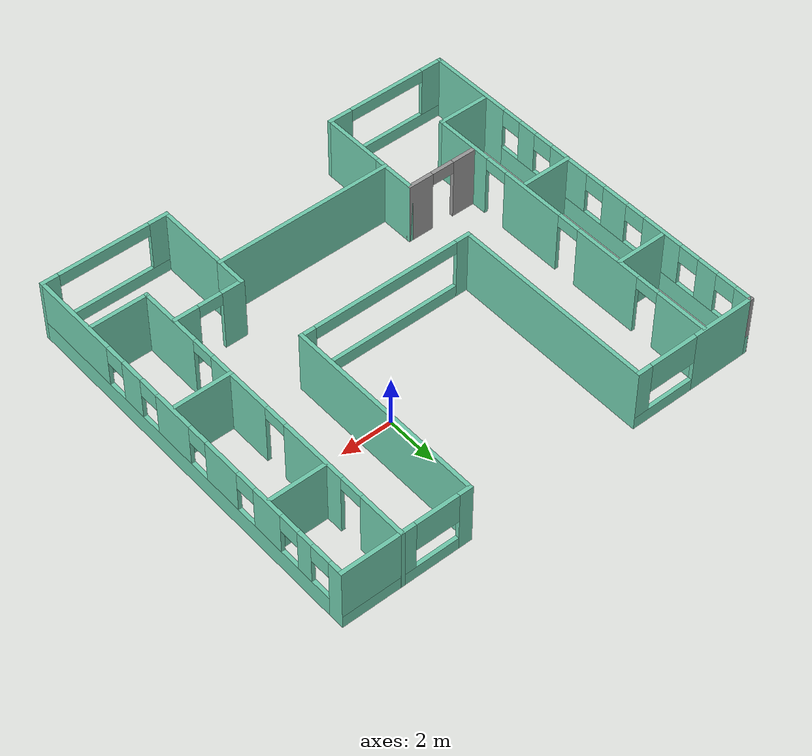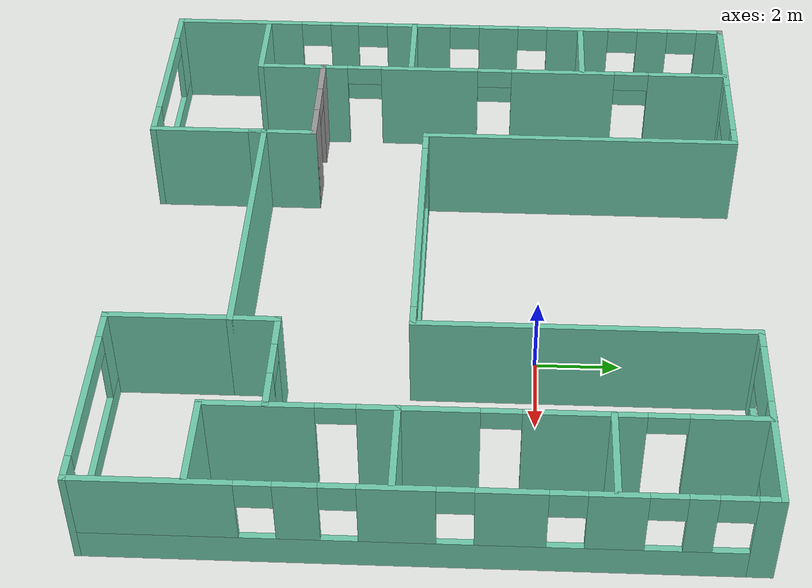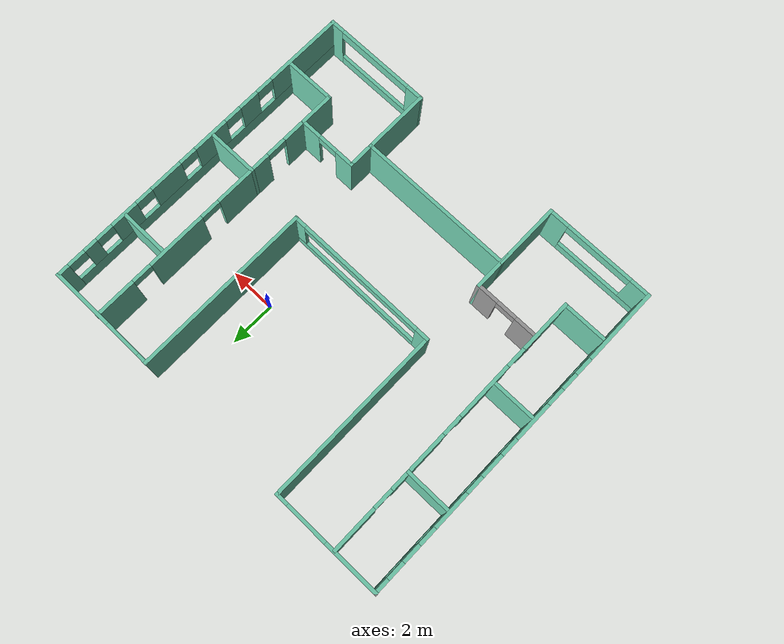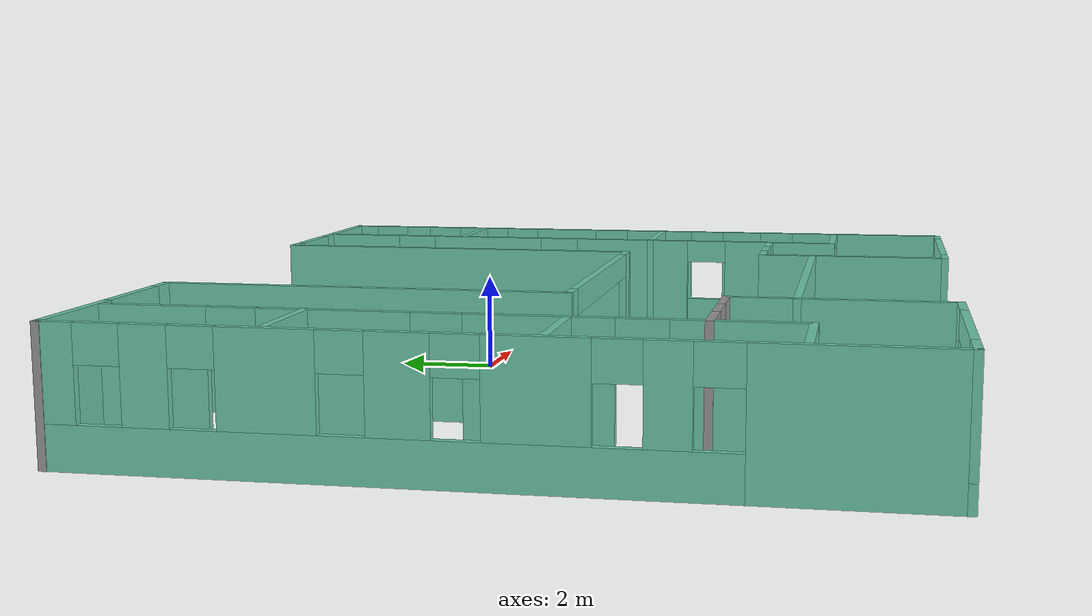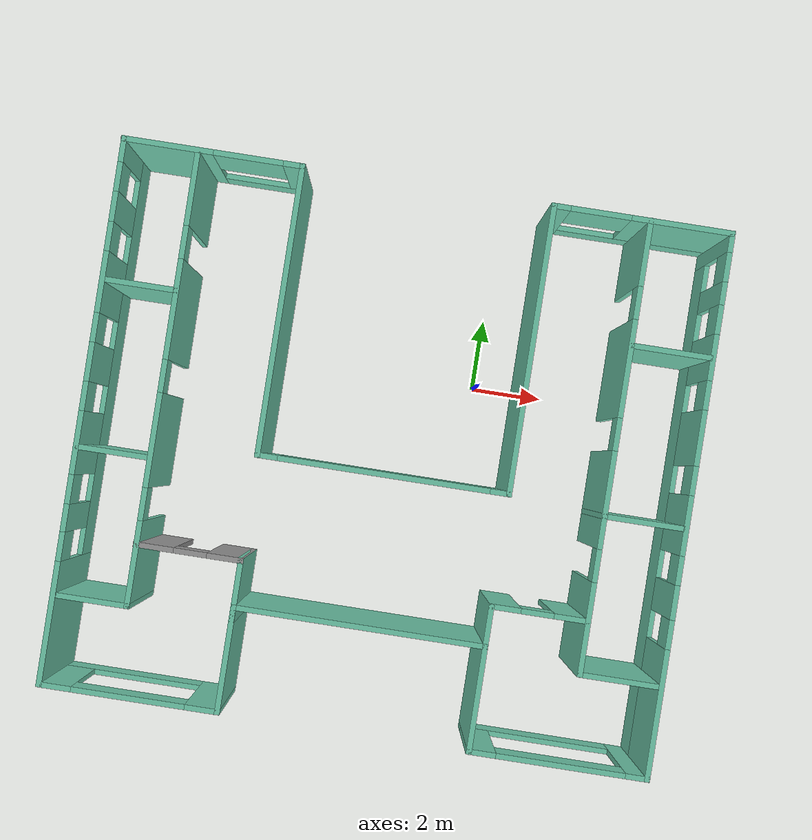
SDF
<?xml version='1.0'?>
<sdf version='1.6'>
  <model name='building'>
    <pose frame=''>-2.23356 -2.43171 0 0 -0 0</pose>
    <link name='Wall_0'>
      <collision name='Wall_0_Collision'>
        <geometry>
          <box>
            <size>0.16 0.15 2.5</size>
          </box>
        </geometry>
        <pose frame=''>0 0 1.25 0 -0 0</pose>
      </collision>
      <visual name='Wall_0_Visual'>
        <pose frame=''>0 0 1.25 0 -0 0</pose>
        <geometry>
          <box>
            <size>0.16 0.15 2.5</size>
          </box>
        </geometry>
        <material>
          <script>
            <uri>file://media/materials/scripts/gazebo.material</uri>
            <name>Gazebo/Grey</name>
          </script>
          <ambient>1 1 1 1</ambient>
        </material>
        <meta>
          <layer>0</layer>
        </meta>
      </visual>
      <pose frame=''>-8.275 7.4223 0 0 -0 0</pose>
    </link>
    <link name='Wall_1'>
      <pose frame=''>-5.845 7.4223 0 0 -0 0</pose>
      <visual name='Wall_1_Visual_0'>
        <pose frame=''>-1.24921 0 1.25 0 -0 0</pose>
        <geometry>
          <box>
            <size>2.50157 0.15 2.5</size>
          </box>
        </geometry>
        <material>
          <script>
            <uri>file://media/materials/scripts/gazebo.material</uri>
            <name>Gazebo/Grey</name>
          </script>
          <ambient>0.435294 0.796078 0.67451 1</ambient>
        </material>
        <meta>
          <layer>0</layer>
        </meta>
      </visual>
      <collision name='Wall_1_Collision_0'>
        <geometry>
          <box>
            <size>2.50157 0.15 2.5</size>
          </box>
        </geometry>
        <pose frame=''>-1.24921 0 1.25 0 -0 0</pose>
      </collision>
      <visual name='Wall_1_Visual_1'>
        <pose frame=''>1.25079 0 0.25 0 -0 0</pose>
        <geometry>
          <box>
            <size>2.49843 0.15 0.5</size>
          </box>
        </geometry>
        <material>
          <script>
            <uri>file://media/materials/scripts/gazebo.material</uri>
            <name>Gazebo/Grey</name>
          </script>
          <ambient>0.435294 0.796078 0.67451 1</ambient>
        </material>
        <meta>
          <layer>0</layer>
        </meta>
      </visual>
      <collision name='Wall_1_Collision_1'>
        <geometry>
          <box>
            <size>2.49843 0.15 0.5</size>
          </box>
        </geometry>
        <pose frame=''>1.25079 0 0.25 0 -0 0</pose>
      </collision>
      <visual name='Wall_1_Visual_2'>
        <pose frame=''>2.20141 0 1.5 0 -0 0</pose>
        <geometry>
          <box>
            <size>0.597181 0.15 2</size>
          </box>
        </geometry>
        <material>
          <script>
            <uri>file://media/materials/scripts/gazebo.material</uri>
            <name>Gazebo/Grey</name>
          </script>
          <ambient>0.435294 0.796078 0.67451 1</ambient>
        </material>
        <meta>
          <layer>0</layer>
        </meta>
      </visual>
      <collision name='Wall_1_Collision_2'>
        <geometry>
          <box>
            <size>0.597181 0.15 2</size>
          </box>
        </geometry>
        <pose frame=''>2.20141 0 1.5 0 -0 0</pose>
      </collision>
      <visual name='Wall_1_Visual_3'>
        <pose frame=''>0.952195 0 1.9 0 -0 0</pose>
        <geometry>
          <box>
            <size>1.90125 0.15 1.2</size>
          </box>
        </geometry>
        <material>
          <script>
            <uri>file://media/materials/scripts/gazebo.material</uri>
            <name>Gazebo/Grey</name>
          </script>
          <ambient>0.435294 0.796078 0.67451 1</ambient>
        </material>
        <meta>
          <layer>0</layer>
        </meta>
      </visual>
      <collision name='Wall_1_Collision_3'>
        <geometry>
          <box>
            <size>1.90125 0.15 1.2</size>
          </box>
        </geometry>
        <pose frame=''>0.952195 0 1.9 0 -0 0</pose>
      </collision>
    </link>
    <link name='Wall_10'>
      <collision name='Wall_10_Collision'>
        <geometry>
          <box>
            <size>3 0.15 2.5</size>
          </box>
        </geometry>
        <pose frame=''>0 0 1.25 0 -0 0</pose>
      </collision>
      <visual name='Wall_10_Visual'>
        <pose frame=''>0 0 1.25 0 -0 0</pose>
        <geometry>
          <box>
            <size>3 0.15 2.5</size>
          </box>
        </geometry>
        <material>
          <script>
            <uri>file://media/materials/scripts/gazebo.material</uri>
            <name>Gazebo/Grey</name>
          </script>
          <ambient>0.435294 0.796078 0.67451 1</ambient>
        </material>
        <meta>
          <layer>0</layer>
        </meta>
      </visual>
      <pose frame=''>-3.42 -6.0027 0 0 0 -1.5708</pose>
    </link>
    <link name='Wall_11'>
      <pose frame=''>-5.845 -7.4277 0 0 -0 3.14159</pose>
      <visual name='Wall_11_Visual_0'>
        <pose frame=''>-2.0178 0 1.25 0 -0 0</pose>
        <geometry>
          <box>
            <size>0.964396 0.15 2.5</size>
          </box>
        </geometry>
        <material>
          <script>
            <uri>file://media/materials/scripts/gazebo.material</uri>
            <name>Gazebo/Grey</name>
          </script>
          <ambient>0.435294 0.796078 0.67451 1</ambient>
        </material>
        <meta>
          <layer>0</layer>
        </meta>
      </visual>
      <collision name='Wall_11_Collision_0'>
        <geometry>
          <box>
            <size>0.964396 0.15 2.5</size>
          </box>
        </geometry>
        <pose frame=''>-2.0178 0 1.25 0 -0 0</pose>
      </collision>
      <visual name='Wall_11_Visual_1'>
        <pose frame=''>0.482198 0 0.25 0 -0 0</pose>
        <geometry>
          <box>
            <size>4.0356 0.15 0.5</size>
          </box>
        </geometry>
        <material>
          <script>
            <uri>file://media/materials/scripts/gazebo.material</uri>
            <name>Gazebo/Grey</name>
          </script>
          <ambient>0.435294 0.796078 0.67451 1</ambient>
        </material>
        <meta>
          <layer>0</layer>
        </meta>
      </visual>
      <collision name='Wall_11_Collision_1'>
        <geometry>
          <box>
            <size>4.0356 0.15 0.5</size>
          </box>
        </geometry>
        <pose frame=''>0.482198 0 0.25 0 -0 0</pose>
      </collision>
      <visual name='Wall_11_Visual_2'>
        <pose frame=''>2.0292 0 1.5 0 -0 0</pose>
        <geometry>
          <box>
            <size>0.941604 0.15 2</size>
          </box>
        </geometry>
        <material>
          <script>
            <uri>file://media/materials/scripts/gazebo.material</uri>
            <name>Gazebo/Grey</name>
          </script>
          <ambient>0.435294 0.796078 0.67451 1</ambient>
        </material>
        <meta>
          <layer>0</layer>
        </meta>
      </visual>
      <collision name='Wall_11_Collision_2'>
        <geometry>
          <box>
            <size>0.941604 0.15 2</size>
          </box>
        </geometry>
        <pose frame=''>2.0292 0 1.5 0 -0 0</pose>
      </collision>
      <visual name='Wall_11_Visual_3'>
        <pose frame=''>0.011396 0 2.25 0 -0 0</pose>
        <geometry>
          <box>
            <size>3.094 0.15 0.5</size>
          </box>
        </geometry>
        <material>
          <script>
            <uri>file://media/materials/scripts/gazebo.material</uri>
            <name>Gazebo/Grey</name>
          </script>
          <ambient>0.435294 0.796078 0.67451 1</ambient>
        </material>
        <meta>
          <layer>0</layer>
        </meta>
      </visual>
      <collision name='Wall_11_Collision_3'>
        <geometry>
          <box>
            <size>3.094 0.15 0.5</size>
          </box>
        </geometry>
        <pose frame=''>0.011396 0 2.25 0 -0 0</pose>
      </collision>
    </link>
    <link name='Wall_12'>
      <pose frame=''>-8.27 -0.002705 0 0 -0 1.5708</pose>
      <visual name='Wall_12_Visual_0'>
        <pose frame=''>-5.78698 0 1.25 0 -0 0</pose>
        <geometry>
          <box>
            <size>3.42604 0.15 2.5</size>
          </box>
        </geometry>
        <material>
          <script>
            <uri>file://media/materials/scripts/gazebo.material</uri>
            <name>Gazebo/Grey</name>
          </script>
          <ambient>0.435294 0.796078 0.67451 1</ambient>
        </material>
        <meta>
          <layer>0</layer>
        </meta>
      </visual>
      <collision name='Wall_12_Collision_0'>
        <geometry>
          <box>
            <size>3.42604 0.15 2.5</size>
          </box>
        </geometry>
        <pose frame=''>-5.78698 0 1.25 0 -0 0</pose>
      </collision>
      <visual name='Wall_12_Visual_1'>
        <pose frame=''>1.71302 0 0.4 0 -0 0</pose>
        <geometry>
          <box>
            <size>11.574 0.15 0.8</size>
          </box>
        </geometry>
        <material>
          <script>
            <uri>file://media/materials/scripts/gazebo.material</uri>
            <name>Gazebo/Grey</name>
          </script>
          <ambient>0.435294 0.796078 0.67451 1</ambient>
        </material>
        <meta>
          <layer>0</layer>
        </meta>
      </visual>
      <collision name='Wall_12_Collision_1'>
        <geometry>
          <box>
            <size>11.574 0.15 0.8</size>
          </box>
        </geometry>
        <pose frame=''>1.71302 0 0.4 0 -0 0</pose>
      </collision>
      <visual name='Wall_12_Visual_2'>
        <pose frame=''>-2.89391 0 1.65 0 -0 0</pose>
        <geometry>
          <box>
            <size>0.760102 0.15 1.7</size>
          </box>
        </geometry>
        <material>
          <script>
            <uri>file://media/materials/scripts/gazebo.material</uri>
            <name>Gazebo/Grey</name>
          </script>
          <ambient>0.435294 0.796078 0.67451 1</ambient>
        </material>
        <meta>
          <layer>0</layer>
        </meta>
      </visual>
      <collision name='Wall_12_Collision_2'>
        <geometry>
          <box>
            <size>0.760102 0.15 1.7</size>
          </box>
        </geometry>
        <pose frame=''>-2.89391 0 1.65 0 -0 0</pose>
      </collision>
      <visual name='Wall_12_Visual_3'>
        <pose frame=''>-0.844363 0 1.65 0 -0 0</pose>
        <geometry>
          <box>
            <size>1.73899 0.15 1.7</size>
          </box>
        </geometry>
        <material>
          <script>
            <uri>file://media/materials/scripts/gazebo.material</uri>
            <name>Gazebo/Grey</name>
          </script>
          <ambient>0.435294 0.796078 0.67451 1</ambient>
        </material>
        <meta>
          <layer>0</layer>
        </meta>
      </visual>
      <collision name='Wall_12_Collision_3'>
        <geometry>
          <box>
            <size>1.73899 0.15 1.7</size>
          </box>
        </geometry>
        <pose frame=''>-0.844363 0 1.65 0 -0 0</pose>
      </collision>
      <visual name='Wall_12_Visual_4'>
        <pose frame=''>1.35813 0 1.65 0 -0 0</pose>
        <geometry>
          <box>
            <size>1.066 0.15 1.7</size>
          </box>
        </geometry>
        <material>
          <script>
            <uri>file://media/materials/scripts/gazebo.material</uri>
            <name>Gazebo/Grey</name>
          </script>
          <ambient>0.435294 0.796078 0.67451 1</ambient>
        </material>
        <meta>
          <layer>0</layer>
        </meta>
      </visual>
      <collision name='Wall_12_Collision_4'>
        <geometry>
          <box>
            <size>1.066 0.15 1.7</size>
          </box>
        </geometry>
        <pose frame=''>1.35813 0 1.65 0 -0 0</pose>
      </collision>
      <visual name='Wall_12_Visual_5'>
        <pose frame=''>3.53004 0 1.65 0 -0 0</pose>
        <geometry>
          <box>
            <size>1.67781 0.15 1.7</size>
          </box>
        </geometry>
        <material>
          <script>
            <uri>file://media/materials/scripts/gazebo.material</uri>
            <name>Gazebo/Grey</name>
          </script>
          <ambient>0.435294 0.796078 0.67451 1</ambient>
        </material>
        <meta>
          <layer>0</layer>
        </meta>
      </visual>
      <collision name='Wall_12_Collision_5'>
        <geometry>
          <box>
            <size>1.67781 0.15 1.7</size>
          </box>
        </geometry>
        <pose frame=''>3.53004 0 1.65 0 -0 0</pose>
      </collision>
      <visual name='Wall_12_Visual_6'>
        <pose frame=''>5.57958 0 1.65 0 -0 0</pose>
        <geometry>
          <box>
            <size>0.821282 0.15 1.7</size>
          </box>
        </geometry>
        <material>
          <script>
            <uri>file://media/materials/scripts/gazebo.material</uri>
            <name>Gazebo/Grey</name>
          </script>
          <ambient>0.435294 0.796078 0.67451 1</ambient>
        </material>
        <meta>
          <layer>0</layer>
        </meta>
      </visual>
      <collision name='Wall_12_Collision_6'>
        <geometry>
          <box>
            <size>0.821282 0.15 1.7</size>
          </box>
        </geometry>
        <pose frame=''>5.57958 0 1.65 0 -0 0</pose>
      </collision>
      <visual name='Wall_12_Visual_7'>
        <pose frame=''>7.14511 0 1.65 0 -0 0</pose>
        <geometry>
          <box>
            <size>0.709774 0.15 1.7</size>
          </box>
        </geometry>
        <material>
          <script>
            <uri>file://media/materials/scripts/gazebo.material</uri>
            <name>Gazebo/Grey</name>
          </script>
          <ambient>0.435294 0.796078 0.67451 1</ambient>
        </material>
        <meta>
          <layer>0</layer>
        </meta>
      </visual>
      <collision name='Wall_12_Collision_7'>
        <geometry>
          <box>
            <size>0.709774 0.15 1.7</size>
          </box>
        </geometry>
        <pose frame=''>7.14511 0 1.65 0 -0 0</pose>
      </collision>
      <visual name='Wall_12_Visual_8'>
        <pose frame=''>-3.67396 0 2.15 0 -0 0</pose>
        <geometry>
          <box>
            <size>0.8 0.15 0.7</size>
          </box>
        </geometry>
        <material>
          <script>
            <uri>file://media/materials/scripts/gazebo.material</uri>
            <name>Gazebo/Grey</name>
          </script>
          <ambient>0.435294 0.796078 0.67451 1</ambient>
        </material>
        <meta>
          <layer>0</layer>
        </meta>
      </visual>
      <collision name='Wall_12_Collision_8'>
        <geometry>
          <box>
            <size>0.8 0.15 0.7</size>
          </box>
        </geometry>
        <pose frame=''>-3.67396 0 2.15 0 -0 0</pose>
      </collision>
      <visual name='Wall_12_Visual_9'>
        <pose frame=''>-2.11386 0 2.15 0 -0 0</pose>
        <geometry>
          <box>
            <size>0.8 0.15 0.7</size>
          </box>
        </geometry>
        <material>
          <script>
            <uri>file://media/materials/scripts/gazebo.material</uri>
            <name>Gazebo/Grey</name>
          </script>
          <ambient>0.435294 0.796078 0.67451 1</ambient>
        </material>
        <meta>
          <layer>0</layer>
        </meta>
      </visual>
      <collision name='Wall_12_Collision_9'>
        <geometry>
          <box>
            <size>0.8 0.15 0.7</size>
          </box>
        </geometry>
        <pose frame=''>-2.11386 0 2.15 0 -0 0</pose>
      </collision>
      <visual name='Wall_12_Visual_10'>
        <pose frame=''>0.425131 0 2.15 0 -0 0</pose>
        <geometry>
          <box>
            <size>0.8 0.15 0.7</size>
          </box>
        </geometry>
        <material>
          <script>
            <uri>file://media/materials/scripts/gazebo.material</uri>
            <name>Gazebo/Grey</name>
          </script>
          <ambient>0.435294 0.796078 0.67451 1</ambient>
        </material>
        <meta>
          <layer>0</layer>
        </meta>
      </visual>
      <collision name='Wall_12_Collision_10'>
        <geometry>
          <box>
            <size>0.8 0.15 0.7</size>
          </box>
        </geometry>
        <pose frame=''>0.425131 0 2.15 0 -0 0</pose>
      </collision>
      <visual name='Wall_12_Visual_11'>
        <pose frame=''>2.29114 0 2.15 0 -0 0</pose>
        <geometry>
          <box>
            <size>0.8 0.15 0.7</size>
          </box>
        </geometry>
        <material>
          <script>
            <uri>file://media/materials/scripts/gazebo.material</uri>
            <name>Gazebo/Grey</name>
          </script>
          <ambient>0.435294 0.796078 0.67451 1</ambient>
        </material>
        <meta>
          <layer>0</layer>
        </meta>
      </visual>
      <collision name='Wall_12_Collision_11'>
        <geometry>
          <box>
            <size>0.8 0.15 0.7</size>
          </box>
        </geometry>
        <pose frame=''>2.29114 0 2.15 0 -0 0</pose>
      </collision>
      <visual name='Wall_12_Visual_12'>
        <pose frame=''>4.76894 0 2.15 0 -0 0</pose>
        <geometry>
          <box>
            <size>0.8 0.15 0.7</size>
          </box>
        </geometry>
        <material>
          <script>
            <uri>file://media/materials/scripts/gazebo.material</uri>
            <name>Gazebo/Grey</name>
          </script>
          <ambient>0.435294 0.796078 0.67451 1</ambient>
        </material>
        <meta>
          <layer>0</layer>
        </meta>
      </visual>
      <collision name='Wall_12_Collision_12'>
        <geometry>
          <box>
            <size>0.8 0.15 0.7</size>
          </box>
        </geometry>
        <pose frame=''>4.76894 0 2.15 0 -0 0</pose>
      </collision>
      <visual name='Wall_12_Visual_13'>
        <pose frame=''>6.39023 0 2.15 0 -0 0</pose>
        <geometry>
          <box>
            <size>0.8 0.15 0.7</size>
          </box>
        </geometry>
        <material>
          <script>
            <uri>file://media/materials/scripts/gazebo.material</uri>
            <name>Gazebo/Grey</name>
          </script>
          <ambient>0.435294 0.796078 0.67451 1</ambient>
        </material>
        <meta>
          <layer>0</layer>
        </meta>
      </visual>
      <collision name='Wall_12_Collision_13'>
        <geometry>
          <box>
            <size>0.8 0.15 0.7</size>
          </box>
        </geometry>
        <pose frame=''>6.39023 0 2.15 0 -0 0</pose>
      </collision>
    </link>
    <link name='Wall_14'>
      <pose frame=''>-6.2584 1.1884 0 0 0 -1.5708</pose>
      <visual name='Wall_14_Visual_0'>
        <pose frame=''>-5.21539 0 1.25 0 -0 0</pose>
        <geometry>
          <box>
            <size>2.06921 0.15 2.5</size>
          </box>
        </geometry>
        <material>
          <script>
            <uri>file://media/materials/scripts/gazebo.material</uri>
            <name>Gazebo/Grey</name>
          </script>
          <ambient>0.435294 0.796078 0.67451 1</ambient>
        </material>
        <meta>
          <layer>0</layer>
        </meta>
      </visual>
      <collision name='Wall_14_Collision_0'>
        <geometry>
          <box>
            <size>2.06921 0.15 2.5</size>
          </box>
        </geometry>
        <pose frame=''>-5.21539 0 1.25 0 -0 0</pose>
      </collision>
      <visual name='Wall_14_Visual_1'>
        <pose frame=''>-1.91067 0 1.25 0 -0 0</pose>
        <geometry>
          <box>
            <size>2.74024 0.15 2.5</size>
          </box>
        </geometry>
        <material>
          <script>
            <uri>file://media/materials/scripts/gazebo.material</uri>
            <name>Gazebo/Grey</name>
          </script>
          <ambient>0.435294 0.796078 0.67451 1</ambient>
        </material>
        <meta>
          <layer>0</layer>
        </meta>
      </visual>
      <collision name='Wall_14_Collision_1'>
        <geometry>
          <box>
            <size>2.74024 0.15 2.5</size>
          </box>
        </geometry>
        <pose frame=''>-1.91067 0 1.25 0 -0 0</pose>
      </collision>
      <visual name='Wall_14_Visual_2'>
        <pose frame=''>1.65309 0 1.25 0 -0 0</pose>
        <geometry>
          <box>
            <size>2.58729 0.15 2.5</size>
          </box>
        </geometry>
        <material>
          <script>
            <uri>file://media/materials/scripts/gazebo.material</uri>
            <name>Gazebo/Grey</name>
          </script>
          <ambient>0.435294 0.796078 0.67451 1</ambient>
        </material>
        <meta>
          <layer>0</layer>
        </meta>
      </visual>
      <collision name='Wall_14_Collision_2'>
        <geometry>
          <box>
            <size>2.58729 0.15 2.5</size>
          </box>
        </geometry>
        <pose frame=''>1.65309 0 1.25 0 -0 0</pose>
      </collision>
      <visual name='Wall_14_Visual_3'>
        <pose frame=''>5.04837 0 1.25 0 -0 0</pose>
        <geometry>
          <box>
            <size>2.40327 0.15 2.5</size>
          </box>
        </geometry>
        <material>
          <script>
            <uri>file://media/materials/scripts/gazebo.material</uri>
            <name>Gazebo/Grey</name>
          </script>
          <ambient>0.435294 0.796078 0.67451 1</ambient>
        </material>
        <meta>
          <layer>0</layer>
        </meta>
      </visual>
      <collision name='Wall_14_Collision_3'>
        <geometry>
          <box>
            <size>2.40327 0.15 2.5</size>
          </box>
        </geometry>
        <pose frame=''>5.04837 0 1.25 0 -0 0</pose>
      </collision>
      <visual name='Wall_14_Visual_4'>
        <pose frame=''>-3.73079 0 2.25 0 -0 0</pose>
        <geometry>
          <box>
            <size>0.9 0.15 0.5</size>
          </box>
        </geometry>
        <material>
          <script>
            <uri>file://media/materials/scripts/gazebo.material</uri>
            <name>Gazebo/Grey</name>
          </script>
          <ambient>0.435294 0.796078 0.67451 1</ambient>
        </material>
        <meta>
          <layer>0</layer>
        </meta>
      </visual>
      <collision name='Wall_14_Collision_4'>
        <geometry>
          <box>
            <size>0.9 0.15 0.5</size>
          </box>
        </geometry>
        <pose frame=''>-3.73079 0 2.25 0 -0 0</pose>
      </collision>
      <visual name='Wall_14_Visual_5'>
        <pose frame=''>-0.090551 0 2.25 0 -0 0</pose>
        <geometry>
          <box>
            <size>0.9 0.15 0.5</size>
          </box>
        </geometry>
        <material>
          <script>
            <uri>file://media/materials/scripts/gazebo.material</uri>
            <name>Gazebo/Grey</name>
          </script>
          <ambient>0.435294 0.796078 0.67451 1</ambient>
        </material>
        <meta>
          <layer>0</layer>
        </meta>
      </visual>
      <collision name='Wall_14_Collision_5'>
        <geometry>
          <box>
            <size>0.9 0.15 0.5</size>
          </box>
        </geometry>
        <pose frame=''>-0.090551 0 2.25 0 -0 0</pose>
      </collision>
      <visual name='Wall_14_Visual_6'>
        <pose frame=''>3.39674 0 2.25 0 -0 0</pose>
        <geometry>
          <box>
            <size>0.9 0.15 0.5</size>
          </box>
        </geometry>
        <material>
          <script>
            <uri>file://media/materials/scripts/gazebo.material</uri>
            <name>Gazebo/Grey</name>
          </script>
          <ambient>0.435294 0.796078 0.67451 1</ambient>
        </material>
        <meta>
          <layer>0</layer>
        </meta>
      </visual>
      <collision name='Wall_14_Collision_6'>
        <geometry>
          <box>
            <size>0.9 0.15 0.5</size>
          </box>
        </geometry>
        <pose frame=''>3.39674 0 2.25 0 -0 0</pose>
      </collision>
    </link>
    <link name='Wall_15'>
      <collision name='Wall_15_Collision'>
        <geometry>
          <box>
            <size>2 0.15 2.5</size>
          </box>
        </geometry>
        <pose frame=''>0 0 1.25 0 -0 0</pose>
      </collision>
      <visual name='Wall_15_Visual'>
        <pose frame=''>0 0 1.25 0 -0 0</pose>
        <geometry>
          <box>
            <size>2 0.15 2.5</size>
          </box>
        </geometry>
        <material>
          <script>
            <uri>file://media/materials/scripts/gazebo.material</uri>
            <name>Gazebo/Grey</name>
          </script>
          <ambient>0.435294 0.796078 0.67451 1</ambient>
        </material>
        <meta>
          <layer>0</layer>
        </meta>
      </visual>
      <pose frame=''>-7.1834 -4.9866 0 0 -0 3.14159</pose>
    </link>
    <link name='Wall_17'>
      <collision name='Wall_17_Collision'>
        <geometry>
          <box>
            <size>2 0.15 2.5</size>
          </box>
        </geometry>
        <pose frame=''>0 0 1.25 0 -0 0</pose>
      </collision>
      <visual name='Wall_17_Visual'>
        <pose frame=''>0 0 1.25 0 -0 0</pose>
        <geometry>
          <box>
            <size>2 0.15 2.5</size>
          </box>
        </geometry>
        <material>
          <script>
            <uri>file://media/materials/scripts/gazebo.material</uri>
            <name>Gazebo/Grey</name>
          </script>
          <ambient>0.435294 0.796078 0.67451 1</ambient>
        </material>
        <meta>
          <layer>0</layer>
        </meta>
      </visual>
      <pose frame=''>-7.19437 3.60381 0 0 -0 3.14159</pose>
    </link>
    <link name='Wall_2'>
      <collision name='Wall_2_Collision'>
        <geometry>
          <box>
            <size>8 0.15 2.5</size>
          </box>
        </geometry>
        <pose frame=''>0 0 1.25 0 -0 0</pose>
      </collision>
      <visual name='Wall_2_Visual'>
        <pose frame=''>0 0 1.25 0 -0 0</pose>
        <geometry>
          <box>
            <size>8 0.15 2.5</size>
          </box>
        </geometry>
        <material>
          <script>
            <uri>file://media/materials/scripts/gazebo.material</uri>
            <name>Gazebo/Grey</name>
          </script>
          <ambient>0.435294 0.796078 0.67451 1</ambient>
        </material>
        <meta>
          <layer>0</layer>
        </meta>
      </visual>
      <pose frame=''>-3.42 3.49729 0 0 0 -1.5708</pose>
    </link>
    <link name='Wall_21'>
      <collision name='Wall_21_Collision'>
        <geometry>
          <box>
            <size>2 0.15 2.5</size>
          </box>
        </geometry>
        <pose frame=''>0 0 1.25 0 -0 0</pose>
      </collision>
      <visual name='Wall_21_Visual'>
        <pose frame=''>0 0 1.25 0 -0 0</pose>
        <geometry>
          <box>
            <size>2 0.15 2.5</size>
          </box>
        </geometry>
        <material>
          <script>
            <uri>file://media/materials/scripts/gazebo.material</uri>
            <name>Gazebo/Grey</name>
          </script>
          <ambient>0.435294 0.796078 0.67451 1</ambient>
        </material>
        <meta>
          <layer>0</layer>
        </meta>
      </visual>
      <pose frame=''>-7.33273 -0.954134 0 0 -0 0</pose>
    </link>
    <link name='Wall_26'>
      <pose frame=''>-4.84436 -3.30958 0 0 -0 0</pose>
      <visual name='Wall_26_Visual_0'>
        <pose frame=''>-0.953335 0 1.25 0 -0 0</pose>
        <geometry>
          <box>
            <size>1.09333 0.15 2.5</size>
          </box>
        </geometry>
        <material>
          <script>
            <uri>file://media/materials/scripts/gazebo.material</uri>
            <name>Gazebo/Grey</name>
          </script>
          <ambient>1 1 1 1</ambient>
        </material>
        <meta>
          <layer>0</layer>
        </meta>
      </visual>
      <collision name='Wall_26_Collision_0'>
        <geometry>
          <box>
            <size>1.09333 0.15 2.5</size>
          </box>
        </geometry>
        <pose frame=''>-0.953335 0 1.25 0 -0 0</pose>
      </collision>
      <visual name='Wall_26_Visual_1'>
        <pose frame=''>0.996665 0 1.25 0 -0 0</pose>
        <geometry>
          <box>
            <size>1.00667 0.15 2.5</size>
          </box>
        </geometry>
        <material>
          <script>
            <uri>file://media/materials/scripts/gazebo.material</uri>
            <name>Gazebo/Grey</name>
          </script>
          <ambient>1 1 1 1</ambient>
        </material>
        <meta>
          <layer>0</layer>
        </meta>
      </visual>
      <collision name='Wall_26_Collision_1'>
        <geometry>
          <box>
            <size>1.00667 0.15 2.5</size>
          </box>
        </geometry>
        <pose frame=''>0.996665 0 1.25 0 -0 0</pose>
      </collision>
      <visual name='Wall_26_Visual_2'>
        <pose frame=''>0.043331 0 2.25 0 -0 0</pose>
        <geometry>
          <box>
            <size>0.9 0.15 0.5</size>
          </box>
        </geometry>
        <material>
          <script>
            <uri>file://media/materials/scripts/gazebo.material</uri>
            <name>Gazebo/Grey</name>
          </script>
          <ambient>1 1 1 1</ambient>
        </material>
        <meta>
          <layer>0</layer>
        </meta>
      </visual>
      <collision name='Wall_26_Collision_2'>
        <geometry>
          <box>
            <size>0.9 0.15 0.5</size>
          </box>
        </geometry>
        <pose frame=''>0.043331 0 2.25 0 -0 0</pose>
      </collision>
    </link>
    <link name='Wall_27'>
      <collision name='Wall_27_Collision'>
        <geometry>
          <box>
            <size>1.75 0.15 2.5</size>
          </box>
        </geometry>
        <pose frame=''>0 0 1.25 0 -0 0</pose>
      </collision>
      <visual name='Wall_27_Visual'>
        <pose frame=''>0 0 1.25 0 -0 0</pose>
        <geometry>
          <box>
            <size>1.75 0.15 2.5</size>
          </box>
        </geometry>
        <material>
          <script>
            <uri>file://media/materials/scripts/gazebo.material</uri>
            <name>Gazebo/Grey</name>
          </script>
          <ambient>0.435294 0.796078 0.67451 1</ambient>
        </material>
        <meta>
          <layer>0</layer>
        </meta>
      </visual>
      <pose frame=''>-3.41936 -4.10958 0 0 0 -1.5708</pose>
    </link>
    <link name='Wall_29'>
      <pose frame=''>6.05856 1.2527 0 0 0 -1.5708</pose>
      <visual name='Wall_29_Visual_0'>
        <pose frame=''>-5.3209 0 1.25 0 -0 0</pose>
        <geometry>
          <box>
            <size>1.8582 0.15 2.5</size>
          </box>
        </geometry>
        <material>
          <script>
            <uri>file://media/materials/scripts/gazebo.material</uri>
            <name>Gazebo/Grey</name>
          </script>
          <ambient>0.435294 0.796078 0.67451 1</ambient>
        </material>
        <meta>
          <layer>0</layer>
        </meta>
      </visual>
      <collision name='Wall_29_Collision_0'>
        <geometry>
          <box>
            <size>1.8582 0.15 2.5</size>
          </box>
        </geometry>
        <pose frame=''>-5.3209 0 1.25 0 -0 0</pose>
      </collision>
      <visual name='Wall_29_Visual_1'>
        <pose frame=''>-2.15227 0 1.25 0 -0 0</pose>
        <geometry>
          <box>
            <size>2.67906 0.15 2.5</size>
          </box>
        </geometry>
        <material>
          <script>
            <uri>file://media/materials/scripts/gazebo.material</uri>
            <name>Gazebo/Grey</name>
          </script>
          <ambient>0.435294 0.796078 0.67451 1</ambient>
        </material>
        <meta>
          <layer>0</layer>
        </meta>
      </visual>
      <collision name='Wall_29_Collision_1'>
        <geometry>
          <box>
            <size>2.67906 0.15 2.5</size>
          </box>
        </geometry>
        <pose frame=''>-2.15227 0 1.25 0 -0 0</pose>
      </collision>
      <visual name='Wall_29_Visual_2'>
        <pose frame=''>1.42679 0 1.25 0 -0 0</pose>
        <geometry>
          <box>
            <size>2.67906 0.15 2.5</size>
          </box>
        </geometry>
        <material>
          <script>
            <uri>file://media/materials/scripts/gazebo.material</uri>
            <name>Gazebo/Grey</name>
          </script>
          <ambient>0.435294 0.796078 0.67451 1</ambient>
        </material>
        <meta>
          <layer>0</layer>
        </meta>
      </visual>
      <collision name='Wall_29_Collision_2'>
        <geometry>
          <box>
            <size>2.67906 0.15 2.5</size>
          </box>
        </geometry>
        <pose frame=''>1.42679 0 1.25 0 -0 0</pose>
      </collision>
      <visual name='Wall_29_Visual_3'>
        <pose frame=''>4.95816 0 1.25 0 -0 0</pose>
        <geometry>
          <box>
            <size>2.58368 0.15 2.5</size>
          </box>
        </geometry>
        <material>
          <script>
            <uri>file://media/materials/scripts/gazebo.material</uri>
            <name>Gazebo/Grey</name>
          </script>
          <ambient>0.435294 0.796078 0.67451 1</ambient>
        </material>
        <meta>
          <layer>0</layer>
        </meta>
      </visual>
      <collision name='Wall_29_Collision_3'>
        <geometry>
          <box>
            <size>2.58368 0.15 2.5</size>
          </box>
        </geometry>
        <pose frame=''>4.95816 0 1.25 0 -0 0</pose>
      </collision>
      <visual name='Wall_29_Visual_4'>
        <pose frame=''>-3.9418 0 2.25 0 -0 0</pose>
        <geometry>
          <box>
            <size>0.9 0.15 0.5</size>
          </box>
        </geometry>
        <material>
          <script>
            <uri>file://media/materials/scripts/gazebo.material</uri>
            <name>Gazebo/Grey</name>
          </script>
          <ambient>0.435294 0.796078 0.67451 1</ambient>
        </material>
        <meta>
          <layer>0</layer>
        </meta>
      </visual>
      <collision name='Wall_29_Collision_4'>
        <geometry>
          <box>
            <size>0.9 0.15 0.5</size>
          </box>
        </geometry>
        <pose frame=''>-3.9418 0 2.25 0 -0 0</pose>
      </collision>
      <visual name='Wall_29_Visual_5'>
        <pose frame=''>-0.36274 0 2.25 0 -0 0</pose>
        <geometry>
          <box>
            <size>0.9 0.15 0.5</size>
          </box>
        </geometry>
        <material>
          <script>
            <uri>file://media/materials/scripts/gazebo.material</uri>
            <name>Gazebo/Grey</name>
          </script>
          <ambient>0.435294 0.796078 0.67451 1</ambient>
        </material>
        <meta>
          <layer>0</layer>
        </meta>
      </visual>
      <collision name='Wall_29_Collision_5'>
        <geometry>
          <box>
            <size>0.9 0.15 0.5</size>
          </box>
        </geometry>
        <pose frame=''>-0.36274 0 2.25 0 -0 0</pose>
      </collision>
      <visual name='Wall_29_Visual_6'>
        <pose frame=''>3.21632 0 2.25 0 -0 0</pose>
        <geometry>
          <box>
            <size>0.9 0.15 0.5</size>
          </box>
        </geometry>
        <material>
          <script>
            <uri>file://media/materials/scripts/gazebo.material</uri>
            <name>Gazebo/Grey</name>
          </script>
          <ambient>0.435294 0.796078 0.67451 1</ambient>
        </material>
        <meta>
          <layer>0</layer>
        </meta>
      </visual>
      <collision name='Wall_29_Collision_6'>
        <geometry>
          <box>
            <size>0.9 0.15 0.5</size>
          </box>
        </geometry>
        <pose frame=''>3.21632 0 2.25 0 -0 0</pose>
      </collision>
    </link>
    <link name='Wall_3'>
      <pose frame=''>0.005 -0.427706 0 0 -0 0</pose>
      <visual name='Wall_3_Visual_0'>
        <pose frame=''>-3.19054 0 1.25 0 -0 0</pose>
        <geometry>
          <box>
            <size>0.618927 0.15 2.5</size>
          </box>
        </geometry>
        <material>
          <script>
            <uri>file://media/materials/scripts/gazebo.material</uri>
            <name>Gazebo/Grey</name>
          </script>
          <ambient>0.435294 0.796078 0.67451 1</ambient>
        </material>
        <meta>
          <layer>0</layer>
        </meta>
      </visual>
      <collision name='Wall_3_Collision_0'>
        <geometry>
          <box>
            <size>0.618927 0.15 2.5</size>
          </box>
        </geometry>
        <pose frame=''>-3.19054 0 1.25 0 -0 0</pose>
      </collision>
      <visual name='Wall_3_Visual_1'>
        <pose frame=''>0.309464 0 0.25 0 -0 0</pose>
        <geometry>
          <box>
            <size>6.38107 0.15 0.5</size>
          </box>
        </geometry>
        <material>
          <script>
            <uri>file://media/materials/scripts/gazebo.material</uri>
            <name>Gazebo/Grey</name>
          </script>
          <ambient>0.435294 0.796078 0.67451 1</ambient>
        </material>
        <meta>
          <layer>0</layer>
        </meta>
      </visual>
      <collision name='Wall_3_Collision_1'>
        <geometry>
          <box>
            <size>6.38107 0.15 0.5</size>
          </box>
        </geometry>
        <pose frame=''>0.309464 0 0.25 0 -0 0</pose>
      </collision>
      <visual name='Wall_3_Visual_2'>
        <pose frame=''>3.20246 0 1.5 0 -0 0</pose>
        <geometry>
          <box>
            <size>0.595073 0.15 2</size>
          </box>
        </geometry>
        <material>
          <script>
            <uri>file://media/materials/scripts/gazebo.material</uri>
            <name>Gazebo/Grey</name>
          </script>
          <ambient>0.435294 0.796078 0.67451 1</ambient>
        </material>
        <meta>
          <layer>0</layer>
        </meta>
      </visual>
      <collision name='Wall_3_Collision_2'>
        <geometry>
          <box>
            <size>0.595073 0.15 2</size>
          </box>
        </geometry>
        <pose frame=''>3.20246 0 1.5 0 -0 0</pose>
      </collision>
      <visual name='Wall_3_Visual_3'>
        <pose frame=''>0.011927 0 2.25 0 -0 0</pose>
        <geometry>
          <box>
            <size>5.786 0.15 0.5</size>
          </box>
        </geometry>
        <material>
          <script>
            <uri>file://media/materials/scripts/gazebo.material</uri>
            <name>Gazebo/Grey</name>
          </script>
          <ambient>0.435294 0.796078 0.67451 1</ambient>
        </material>
        <meta>
          <layer>0</layer>
        </meta>
      </visual>
      <collision name='Wall_3_Collision_3'>
        <geometry>
          <box>
            <size>5.786 0.15 0.5</size>
          </box>
        </geometry>
        <pose frame=''>0.011927 0 2.25 0 -0 0</pose>
      </collision>
    </link>
    <link name='Wall_34'>
      <collision name='Wall_34_Collision'>
        <geometry>
          <box>
            <size>2.25 0.15 2.5</size>
          </box>
        </geometry>
        <pose frame=''>0 0 1.25 0 -0 0</pose>
      </collision>
      <visual name='Wall_34_Visual'>
        <pose frame=''>0 0 1.25 0 -0 0</pose>
        <geometry>
          <box>
            <size>2.25 0.15 2.5</size>
          </box>
        </geometry>
        <material>
          <script>
            <uri>file://media/materials/scripts/gazebo.material</uri>
            <name>Gazebo/Grey</name>
          </script>
          <ambient>0.435294 0.796078 0.67451 1</ambient>
        </material>
        <meta>
          <layer>0</layer>
        </meta>
      </visual>
      <pose frame=''>7.13909 4.03207 0 0 -0 0</pose>
    </link>
    <link name='Wall_36'>
      <collision name='Wall_36_Collision'>
        <geometry>
          <box>
            <size>2.25 0.15 2.5</size>
          </box>
        </geometry>
        <pose frame=''>0 0 1.25 0 -0 0</pose>
      </collision>
      <visual name='Wall_36_Visual'>
        <pose frame=''>0 0 1.25 0 -0 0</pose>
        <geometry>
          <box>
            <size>2.25 0.15 2.5</size>
          </box>
        </geometry>
        <material>
          <script>
            <uri>file://media/materials/scripts/gazebo.material</uri>
            <name>Gazebo/Grey</name>
          </script>
          <ambient>0.435294 0.796078 0.67451 1</ambient>
        </material>
        <meta>
          <layer>0</layer>
        </meta>
      </visual>
      <pose frame=''>7.1085 -0.617642 0 0 -0 0</pose>
    </link>
    <link name='Wall_38'>
      <collision name='Wall_38_Collision'>
        <geometry>
          <box>
            <size>2.25 0.15 2.5</size>
          </box>
        </geometry>
        <pose frame=''>0 0 1.25 0 -0 0</pose>
      </collision>
      <visual name='Wall_38_Visual'>
        <pose frame=''>0 0 1.25 0 -0 0</pose>
        <geometry>
          <box>
            <size>2.25 0.15 2.5</size>
          </box>
        </geometry>
        <material>
          <script>
            <uri>file://media/materials/scripts/gazebo.material</uri>
            <name>Gazebo/Grey</name>
          </script>
          <ambient>0.435294 0.796078 0.67451 1</ambient>
        </material>
        <meta>
          <layer>0</layer>
        </meta>
      </visual>
      <pose frame=''>7.10856 -4.9223 0 0 -0 0</pose>
    </link>
    <link name='Wall_4'>
      <collision name='Wall_4_Collision'>
        <geometry>
          <box>
            <size>8 0.15 2.5</size>
          </box>
        </geometry>
        <pose frame=''>0 0 1.25 0 -0 0</pose>
      </collision>
      <visual name='Wall_4_Visual'>
        <pose frame=''>0 0 1.25 0 -0 0</pose>
        <geometry>
          <box>
            <size>8 0.15 2.5</size>
          </box>
        </geometry>
        <material>
          <script>
            <uri>file://media/materials/scripts/gazebo.material</uri>
            <name>Gazebo/Grey</name>
          </script>
          <ambient>0.435294 0.796078 0.67451 1</ambient>
        </material>
        <meta>
          <layer>0</layer>
        </meta>
      </visual>
      <pose frame=''>3.43 3.49729 0 0 -0 1.5708</pose>
    </link>
    <link name='Wall_40'>
      <collision name='Wall_40_Collision'>
        <geometry>
          <box>
            <size>1.25 0.15 2.5</size>
          </box>
        </geometry>
        <pose frame=''>0 0 1.25 0 -0 0</pose>
      </collision>
      <visual name='Wall_40_Visual'>
        <pose frame=''>0 0 1.25 0 -0 0</pose>
        <geometry>
          <box>
            <size>1.25 0.15 2.5</size>
          </box>
        </geometry>
        <material>
          <script>
            <uri>file://media/materials/scripts/gazebo.material</uri>
            <name>Gazebo/Grey</name>
          </script>
          <ambient>0.435294 0.796078 0.67451 1</ambient>
        </material>
        <meta>
          <layer>0</layer>
        </meta>
      </visual>
      <pose frame=''>3.43 -4.02771 0 0 -0 1.5708</pose>
    </link>
    <link name='Wall_41'>
      <pose frame=''>4.73 -3.4777 0 0 -0 0</pose>
      <visual name='Wall_41_Visual_0'>
        <pose frame=''>-0.936531 0 1.25 0 -0 0</pose>
        <geometry>
          <box>
            <size>0.876937 0.15 2.5</size>
          </box>
        </geometry>
        <material>
          <script>
            <uri>file://media/materials/scripts/gazebo.material</uri>
            <name>Gazebo/Grey</name>
          </script>
          <ambient>0.435294 0.796078 0.67451 1</ambient>
        </material>
        <meta>
          <layer>0</layer>
        </meta>
      </visual>
      <collision name='Wall_41_Collision_0'>
        <geometry>
          <box>
            <size>0.876937 0.15 2.5</size>
          </box>
        </geometry>
        <pose frame=''>-0.936531 0 1.25 0 -0 0</pose>
      </collision>
      <visual name='Wall_41_Visual_1'>
        <pose frame=''>0.888469 0 1.25 0 -0 0</pose>
        <geometry>
          <box>
            <size>0.973063 0.15 2.5</size>
          </box>
        </geometry>
        <material>
          <script>
            <uri>file://media/materials/scripts/gazebo.material</uri>
            <name>Gazebo/Grey</name>
          </script>
          <ambient>0.435294 0.796078 0.67451 1</ambient>
        </material>
        <meta>
          <layer>0</layer>
        </meta>
      </visual>
      <collision name='Wall_41_Collision_1'>
        <geometry>
          <box>
            <size>0.973063 0.15 2.5</size>
          </box>
        </geometry>
        <pose frame=''>0.888469 0 1.25 0 -0 0</pose>
      </collision>
      <visual name='Wall_41_Visual_2'>
        <pose frame=''>-0.048063 0 2.25 0 -0 0</pose>
        <geometry>
          <box>
            <size>0.9 0.15 0.5</size>
          </box>
        </geometry>
        <material>
          <script>
            <uri>file://media/materials/scripts/gazebo.material</uri>
            <name>Gazebo/Grey</name>
          </script>
          <ambient>0.435294 0.796078 0.67451 1</ambient>
        </material>
        <meta>
          <layer>0</layer>
        </meta>
      </visual>
      <collision name='Wall_41_Collision_2'>
        <geometry>
          <box>
            <size>0.9 0.15 0.5</size>
          </box>
        </geometry>
        <pose frame=''>-0.048063 0 2.25 0 -0 0</pose>
      </collision>
    </link>
    <link name='Wall_5'>
      <pose frame=''>5.855 7.4223 0 0 -0 0</pose>
      <visual name='Wall_5_Visual_0'>
        <pose frame=''>-2.23537 0 1.25 0 -0 0</pose>
        <geometry>
          <box>
            <size>0.529264 0.15 2.5</size>
          </box>
        </geometry>
        <material>
          <script>
            <uri>file://media/materials/scripts/gazebo.material</uri>
            <name>Gazebo/Grey</name>
          </script>
          <ambient>0.435294 0.796078 0.67451 1</ambient>
        </material>
        <meta>
          <layer>0</layer>
        </meta>
      </visual>
      <collision name='Wall_5_Collision_0'>
        <geometry>
          <box>
            <size>0.529264 0.15 2.5</size>
          </box>
        </geometry>
        <pose frame=''>-2.23537 0 1.25 0 -0 0</pose>
      </collision>
      <visual name='Wall_5_Visual_1'>
        <pose frame=''>0.264632 0 0.25 0 -0 0</pose>
        <geometry>
          <box>
            <size>4.47074 0.15 0.5</size>
          </box>
        </geometry>
        <material>
          <script>
            <uri>file://media/materials/scripts/gazebo.material</uri>
            <name>Gazebo/Grey</name>
          </script>
          <ambient>0.435294 0.796078 0.67451 1</ambient>
        </material>
        <meta>
          <layer>0</layer>
        </meta>
      </visual>
      <collision name='Wall_5_Collision_1'>
        <geometry>
          <box>
            <size>4.47074 0.15 0.5</size>
          </box>
        </geometry>
        <pose frame=''>0.264632 0 0.25 0 -0 0</pose>
      </collision>
      <visual name='Wall_5_Visual_2'>
        <pose frame=''>1.09289 0 1.5 0 -0 0</pose>
        <geometry>
          <box>
            <size>2.81421 0.15 2</size>
          </box>
        </geometry>
        <material>
          <script>
            <uri>file://media/materials/scripts/gazebo.material</uri>
            <name>Gazebo/Grey</name>
          </script>
          <ambient>0.435294 0.796078 0.67451 1</ambient>
        </material>
        <meta>
          <layer>0</layer>
        </meta>
      </visual>
      <collision name='Wall_5_Collision_2'>
        <geometry>
          <box>
            <size>2.81421 0.15 2</size>
          </box>
        </geometry>
        <pose frame=''>1.09289 0 1.5 0 -0 0</pose>
      </collision>
      <visual name='Wall_5_Visual_3'>
        <pose frame=''>-1.14247 0 1.9 0 -0 0</pose>
        <geometry>
          <box>
            <size>1.65653 0.15 1.2</size>
          </box>
        </geometry>
        <material>
          <script>
            <uri>file://media/materials/scripts/gazebo.material</uri>
            <name>Gazebo/Grey</name>
          </script>
          <ambient>0.435294 0.796078 0.67451 1</ambient>
        </material>
        <meta>
          <layer>0</layer>
        </meta>
      </visual>
      <collision name='Wall_5_Collision_3'>
        <geometry>
          <box>
            <size>1.65653 0.15 1.2</size>
          </box>
        </geometry>
        <pose frame=''>-1.14247 0 1.9 0 -0 0</pose>
      </collision>
    </link>
    <link name='Wall_6'>
      <pose frame=''>8.28 -0.002705 0 0 0 -1.5708</pose>
      <visual name='Wall_6_Visual_0'>
        <pose frame=''>-7.20629 0 1.25 0 -0 0</pose>
        <geometry>
          <box>
            <size>0.587413 0.15 2.5</size>
          </box>
        </geometry>
        <material>
          <script>
            <uri>file://media/materials/scripts/gazebo.material</uri>
            <name>Gazebo/Grey</name>
          </script>
          <ambient>0.435294 0.796078 0.67451 1</ambient>
        </material>
        <meta>
          <layer>0</layer>
        </meta>
      </visual>
      <collision name='Wall_6_Collision_0'>
        <geometry>
          <box>
            <size>0.587413 0.15 2.5</size>
          </box>
        </geometry>
        <pose frame=''>-7.20629 0 1.25 0 -0 0</pose>
      </collision>
      <visual name='Wall_6_Visual_1'>
        <pose frame=''>0.293707 0 0.4 0 -0 0</pose>
        <geometry>
          <box>
            <size>14.4126 0.15 0.8</size>
          </box>
        </geometry>
        <material>
          <script>
            <uri>file://media/materials/scripts/gazebo.material</uri>
            <name>Gazebo/Grey</name>
          </script>
          <ambient>0.435294 0.796078 0.67451 1</ambient>
        </material>
        <meta>
          <layer>0</layer>
        </meta>
      </visual>
      <collision name='Wall_6_Collision_1'>
        <geometry>
          <box>
            <size>14.4126 0.15 0.8</size>
          </box>
        </geometry>
        <pose frame=''>0.293707 0 0.4 0 -0 0</pose>
      </collision>
      <visual name='Wall_6_Visual_2'>
        <pose frame=''>-5.8002 0 1.65 0 -0 0</pose>
        <geometry>
          <box>
            <size>0.624781 0.15 1.7</size>
          </box>
        </geometry>
        <material>
          <script>
            <uri>file://media/materials/scripts/gazebo.material</uri>
            <name>Gazebo/Grey</name>
          </script>
          <ambient>0.435294 0.796078 0.67451 1</ambient>
        </material>
        <meta>
          <layer>0</layer>
        </meta>
      </visual>
      <collision name='Wall_6_Collision_2'>
        <geometry>
          <box>
            <size>0.624781 0.15 1.7</size>
          </box>
        </geometry>
        <pose frame=''>-5.8002 0 1.65 0 -0 0</pose>
      </collision>
      <visual name='Wall_6_Visual_3'>
        <pose frame=''>-4.05655 0 1.65 0 -0 0</pose>
        <geometry>
          <box>
            <size>1.2625 0.15 1.7</size>
          </box>
        </geometry>
        <material>
          <script>
            <uri>file://media/materials/scripts/gazebo.material</uri>
            <name>Gazebo/Grey</name>
          </script>
          <ambient>0.435294 0.796078 0.67451 1</ambient>
        </material>
        <meta>
          <layer>0</layer>
        </meta>
      </visual>
      <collision name='Wall_6_Collision_3'>
        <geometry>
          <box>
            <size>1.2625 0.15 1.7</size>
          </box>
        </geometry>
        <pose frame=''>-4.05655 0 1.65 0 -0 0</pose>
      </collision>
      <visual name='Wall_6_Visual_4'>
        <pose frame=''>-1.86287 0 1.65 0 -0 0</pose>
        <geometry>
          <box>
            <size>1.52486 0.15 1.7</size>
          </box>
        </geometry>
        <material>
          <script>
            <uri>file://media/materials/scripts/gazebo.material</uri>
            <name>Gazebo/Grey</name>
          </script>
          <ambient>0.435294 0.796078 0.67451 1</ambient>
        </material>
        <meta>
          <layer>0</layer>
        </meta>
      </visual>
      <collision name='Wall_6_Collision_4'>
        <geometry>
          <box>
            <size>1.52486 0.15 1.7</size>
          </box>
        </geometry>
        <pose frame=''>-1.86287 0 1.65 0 -0 0</pose>
      </collision>
      <visual name='Wall_6_Visual_5'>
        <pose frame=''>0.523166 0 1.65 0 -0 0</pose>
        <geometry>
          <box>
            <size>1.64722 0.15 1.7</size>
          </box>
        </geometry>
        <material>
          <script>
            <uri>file://media/materials/scripts/gazebo.material</uri>
            <name>Gazebo/Grey</name>
          </script>
          <ambient>0.435294 0.796078 0.67451 1</ambient>
        </material>
        <meta>
          <layer>0</layer>
        </meta>
      </visual>
      <collision name='Wall_6_Collision_5'>
        <geometry>
          <box>
            <size>1.64722 0.15 1.7</size>
          </box>
        </geometry>
        <pose frame=''>0.523166 0 1.65 0 -0 0</pose>
      </collision>
      <visual name='Wall_6_Visual_6'>
        <pose frame=''>2.6186 0 1.65 0 -0 0</pose>
        <geometry>
          <box>
            <size>0.943643 0.15 1.7</size>
          </box>
        </geometry>
        <material>
          <script>
            <uri>file://media/materials/scripts/gazebo.material</uri>
            <name>Gazebo/Grey</name>
          </script>
          <ambient>0.435294 0.796078 0.67451 1</ambient>
        </material>
        <meta>
          <layer>0</layer>
        </meta>
      </visual>
      <collision name='Wall_6_Collision_6'>
        <geometry>
          <box>
            <size>0.943643 0.15 1.7</size>
          </box>
        </geometry>
        <pose frame=''>2.6186 0 1.65 0 -0 0</pose>
      </collision>
      <visual name='Wall_6_Visual_7'>
        <pose frame=''>5.69521 0 1.65 0 -0 0</pose>
        <geometry>
          <box>
            <size>3.60958 0.15 1.7</size>
          </box>
        </geometry>
        <material>
          <script>
            <uri>file://media/materials/scripts/gazebo.material</uri>
            <name>Gazebo/Grey</name>
          </script>
          <ambient>0.435294 0.796078 0.67451 1</ambient>
        </material>
        <meta>
          <layer>0</layer>
        </meta>
      </visual>
      <collision name='Wall_6_Collision_7'>
        <geometry>
          <box>
            <size>3.60958 0.15 1.7</size>
          </box>
        </geometry>
        <pose frame=''>5.69521 0 1.65 0 -0 0</pose>
      </collision>
      <visual name='Wall_6_Visual_8'>
        <pose frame=''>-6.51259 0 2.15 0 -0 0</pose>
        <geometry>
          <box>
            <size>0.8 0.15 0.7</size>
          </box>
        </geometry>
        <material>
          <script>
            <uri>file://media/materials/scripts/gazebo.material</uri>
            <name>Gazebo/Grey</name>
          </script>
          <ambient>0.435294 0.796078 0.67451 1</ambient>
        </material>
        <meta>
          <layer>0</layer>
        </meta>
      </visual>
      <collision name='Wall_6_Collision_8'>
        <geometry>
          <box>
            <size>0.8 0.15 0.7</size>
          </box>
        </geometry>
        <pose frame=''>-6.51259 0 2.15 0 -0 0</pose>
      </collision>
      <visual name='Wall_6_Visual_9'>
        <pose frame=''>-5.08781 0 2.15 0 -0 0</pose>
        <geometry>
          <box>
            <size>0.8 0.15 0.7</size>
          </box>
        </geometry>
        <material>
          <script>
            <uri>file://media/materials/scripts/gazebo.material</uri>
            <name>Gazebo/Grey</name>
          </script>
          <ambient>0.435294 0.796078 0.67451 1</ambient>
        </material>
        <meta>
          <layer>0</layer>
        </meta>
      </visual>
      <collision name='Wall_6_Collision_9'>
        <geometry>
          <box>
            <size>0.8 0.15 0.7</size>
          </box>
        </geometry>
        <pose frame=''>-5.08781 0 2.15 0 -0 0</pose>
      </collision>
      <visual name='Wall_6_Visual_10'>
        <pose frame=''>-3.0253 0 2.15 0 -0 0</pose>
        <geometry>
          <box>
            <size>0.8 0.15 0.7</size>
          </box>
        </geometry>
        <material>
          <script>
            <uri>file://media/materials/scripts/gazebo.material</uri>
            <name>Gazebo/Grey</name>
          </script>
          <ambient>0.435294 0.796078 0.67451 1</ambient>
        </material>
        <meta>
          <layer>0</layer>
        </meta>
      </visual>
      <collision name='Wall_6_Collision_10'>
        <geometry>
          <box>
            <size>0.8 0.15 0.7</size>
          </box>
        </geometry>
        <pose frame=''>-3.0253 0 2.15 0 -0 0</pose>
      </collision>
      <visual name='Wall_6_Visual_11'>
        <pose frame=''>-0.700443 0 2.15 0 -0 0</pose>
        <geometry>
          <box>
            <size>0.8 0.15 0.7</size>
          </box>
        </geometry>
        <material>
          <script>
            <uri>file://media/materials/scripts/gazebo.material</uri>
            <name>Gazebo/Grey</name>
          </script>
          <ambient>0.435294 0.796078 0.67451 1</ambient>
        </material>
        <meta>
          <layer>0</layer>
        </meta>
      </visual>
      <collision name='Wall_6_Collision_11'>
        <geometry>
          <box>
            <size>0.8 0.15 0.7</size>
          </box>
        </geometry>
        <pose frame=''>-0.700443 0 2.15 0 -0 0</pose>
      </collision>
      <visual name='Wall_6_Visual_12'>
        <pose frame=''>1.74677 0 2.15 0 -0 0</pose>
        <geometry>
          <box>
            <size>0.8 0.15 0.7</size>
          </box>
        </geometry>
        <material>
          <script>
            <uri>file://media/materials/scripts/gazebo.material</uri>
            <name>Gazebo/Grey</name>
          </script>
          <ambient>0.435294 0.796078 0.67451 1</ambient>
        </material>
        <meta>
          <layer>0</layer>
        </meta>
      </visual>
      <collision name='Wall_6_Collision_12'>
        <geometry>
          <box>
            <size>0.8 0.15 0.7</size>
          </box>
        </geometry>
        <pose frame=''>1.74677 0 2.15 0 -0 0</pose>
      </collision>
      <visual name='Wall_6_Visual_13'>
        <pose frame=''>3.49042 0 2.15 0 -0 0</pose>
        <geometry>
          <box>
            <size>0.8 0.15 0.7</size>
          </box>
        </geometry>
        <material>
          <script>
            <uri>file://media/materials/scripts/gazebo.material</uri>
            <name>Gazebo/Grey</name>
          </script>
          <ambient>0.435294 0.796078 0.67451 1</ambient>
        </material>
        <meta>
          <layer>0</layer>
        </meta>
      </visual>
      <collision name='Wall_6_Collision_13'>
        <geometry>
          <box>
            <size>0.8 0.15 0.7</size>
          </box>
        </geometry>
        <pose frame=''>3.49042 0 2.15 0 -0 0</pose>
      </collision>
    </link>
    <link name='Wall_7'>
      <pose frame=''>5.855 -7.4277 0 0 -0 3.14159</pose>
      <visual name='Wall_7_Visual_0'>
        <pose frame=''>-2.16367 0 1.25 0 -0 0</pose>
        <geometry>
          <box>
            <size>0.672659 0.15 2.5</size>
          </box>
        </geometry>
        <material>
          <script>
            <uri>file://media/materials/scripts/gazebo.material</uri>
            <name>Gazebo/Grey</name>
          </script>
          <ambient>0.435294 0.796078 0.67451 1</ambient>
        </material>
        <meta>
          <layer>0</layer>
        </meta>
      </visual>
      <collision name='Wall_7_Collision_0'>
        <geometry>
          <box>
            <size>0.672659 0.15 2.5</size>
          </box>
        </geometry>
        <pose frame=''>-2.16367 0 1.25 0 -0 0</pose>
      </collision>
      <visual name='Wall_7_Visual_1'>
        <pose frame=''>0.336329 0 0.25 0 -0 0</pose>
        <geometry>
          <box>
            <size>4.32734 0.15 0.5</size>
          </box>
        </geometry>
        <material>
          <script>
            <uri>file://media/materials/scripts/gazebo.material</uri>
            <name>Gazebo/Grey</name>
          </script>
          <ambient>0.435294 0.796078 0.67451 1</ambient>
        </material>
        <meta>
          <layer>0</layer>
        </meta>
      </visual>
      <collision name='Wall_7_Collision_1'>
        <geometry>
          <box>
            <size>4.32734 0.15 0.5</size>
          </box>
        </geometry>
        <pose frame=''>0.336329 0 0.25 0 -0 0</pose>
      </collision>
      <visual name='Wall_7_Visual_2'>
        <pose frame=''>2.09783 0 1.5 0 -0 0</pose>
        <geometry>
          <box>
            <size>0.804341 0.15 2</size>
          </box>
        </geometry>
        <material>
          <script>
            <uri>file://media/materials/scripts/gazebo.material</uri>
            <name>Gazebo/Grey</name>
          </script>
          <ambient>0.435294 0.796078 0.67451 1</ambient>
        </material>
        <meta>
          <layer>0</layer>
        </meta>
      </visual>
      <collision name='Wall_7_Collision_2'>
        <geometry>
          <box>
            <size>0.804341 0.15 2</size>
          </box>
        </geometry>
        <pose frame=''>2.09783 0 1.5 0 -0 0</pose>
      </collision>
      <visual name='Wall_7_Visual_3'>
        <pose frame=''>-0.065841 0 2.25 0 -0 0</pose>
        <geometry>
          <box>
            <size>3.523 0.15 0.5</size>
          </box>
        </geometry>
        <material>
          <script>
            <uri>file://media/materials/scripts/gazebo.material</uri>
            <name>Gazebo/Grey</name>
          </script>
          <ambient>0.435294 0.796078 0.67451 1</ambient>
        </material>
        <meta>
          <layer>0</layer>
        </meta>
      </visual>
      <collision name='Wall_7_Collision_3'>
        <geometry>
          <box>
            <size>3.523 0.15 0.5</size>
          </box>
        </geometry>
        <pose frame=''>-0.065841 0 2.25 0 -0 0</pose>
      </collision>
    </link>
    <link name='Wall_8'>
      <collision name='Wall_8_Collision'>
        <geometry>
          <box>
            <size>3 0.15 2.5</size>
          </box>
        </geometry>
        <pose frame=''>0 0 1.25 0 -0 0</pose>
      </collision>
      <visual name='Wall_8_Visual'>
        <pose frame=''>0 0 1.25 0 -0 0</pose>
        <geometry>
          <box>
            <size>3 0.15 2.5</size>
          </box>
        </geometry>
        <material>
          <script>
            <uri>file://media/materials/scripts/gazebo.material</uri>
            <name>Gazebo/Grey</name>
          </script>
          <ambient>0.435294 0.796078 0.67451 1</ambient>
        </material>
        <meta>
          <layer>0</layer>
        </meta>
      </visual>
      <pose frame=''>3.43 -6.0027 0 0 -0 1.5708</pose>
    </link>
    <link name='Wall_9'>
      <collision name='Wall_9_Collision'>
        <geometry>
          <box>
            <size>7 0.15 2.5</size>
          </box>
        </geometry>
        <pose frame=''>0 0 1.25 0 -0 0</pose>
      </collision>
      <visual name='Wall_9_Visual'>
        <pose frame=''>0 0 1.25 0 -0 0</pose>
        <geometry>
          <box>
            <size>7 0.15 2.5</size>
          </box>
        </geometry>
        <material>
          <script>
            <uri>file://media/materials/scripts/gazebo.material</uri>
            <name>Gazebo/Grey</name>
          </script>
          <ambient>0.435294 0.796078 0.67451 1</ambient>
        </material>
        <meta>
          <layer>0</layer>
        </meta>
      </visual>
      <pose frame=''>0.005 -4.5777 0 0 -0 3.14159</pose>
    </link>
    <static>1</static>
  </model>
</sdf>
